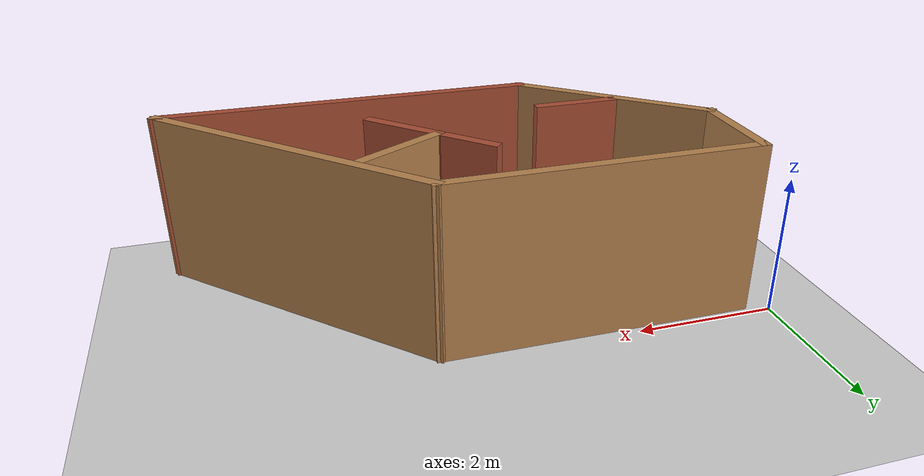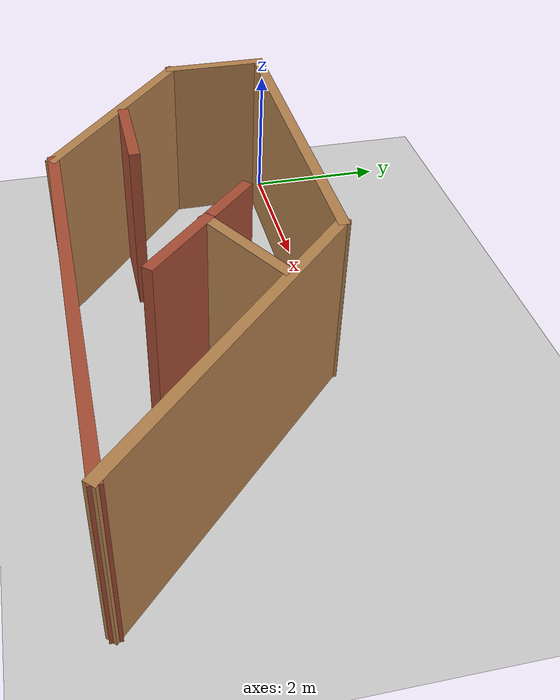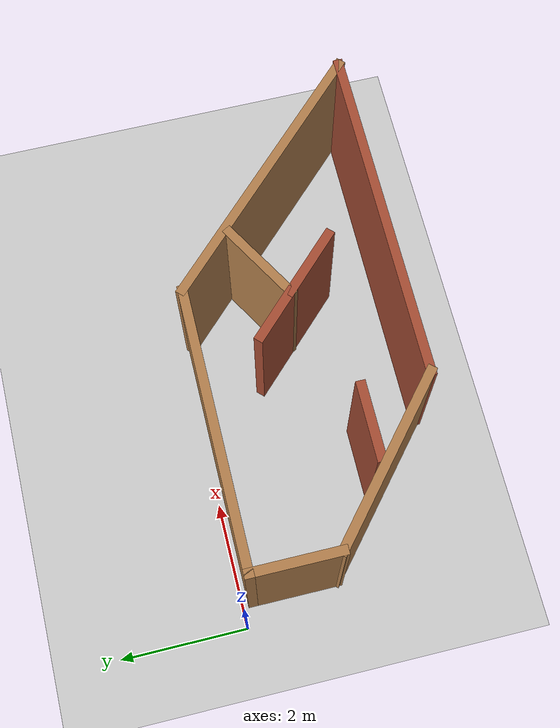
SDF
<sdf version="1.7">
 <world name="default">
  <light name="sun" type="directional">
   <pose>0 0 10 0 -0 0</pose>
   <diffuse>0.8 0.8 0.8 1</diffuse>
   <specular>0.2 0.2 0.2 1</specular>
   <attenuation>
    <range>1000</range>
    <constant>0.9</constant>
    <linear>0.01</linear>
    <quadratic>0.001</quadratic>
   </attenuation>
   <direction>-0.5 0.1 -0.9</direction>
   <spot><inner_angle>0</inner_angle><outer_angle>0</outer_angle><falloff>0</falloff></spot>
  </light>
  <model name="ground_plane">
   <static>1</static>
   <link name="link">
    <collision name="collision">
     <geometry><plane><normal>0 0 1</normal><size>100 100</size></plane></geometry>
     <surface>
      <contact><collide_bitmask>65535</collide_bitmask></contact>
      <friction><ode><mu>100</mu><mu2>50</mu2></ode></friction>
     </surface>
    </collision>
    <visual name="visual">
     <cast_shadows>0</cast_shadows>
     <geometry><plane><normal>0 0 1</normal><size>100 100</size></plane></geometry>
     <material>
      <script><uri>file://media/materials/scripts/gazebo.material</uri><name>Gazebo/Grey</name></script>
     </material>
    </visual>
   </link>
  </model>
  <gravity>0 0 -9.8</gravity>
  <magnetic_field>6e-06 2.3e-05 -4.2e-05</magnetic_field>
  <atmosphere type="adiabatic"/>
  <physics type="ode">
   <max_step_size>0.001</max_step_size>
   <real_time_factor>1</real_time_factor>
   <real_time_update_rate>1000</real_time_update_rate>
  </physics>
  <scene><ambient>0.4 0.4 0.4 1</ambient><background>0.7 0.7 0.7 1</background><shadows>1</shadows></scene>
  <spherical_coordinates>
   <surface_model>EARTH_WGS84</surface_model>
   <latitude_deg>0</latitude_deg>
   <longitude_deg>0</longitude_deg>
   <elevation>0</elevation>
   <heading_deg>0</heading_deg>
  </spherical_coordinates>
  <model name="sim_world">
   <pose>4.18811 -1.66131 0 0 -0 0</pose>
   <link name="Wall_40">
    <collision name="Wall_40_Collision">
     <geometry><box><size>1.5 0.15 2.5</size></box></geometry>
     <pose>0 0 1.25 0 -0 0</pose>
    </collision>
    <visual name="Wall_40_Visual">
     <pose>0 0 1.25 0 -0 0</pose>
     <geometry><box><size>1.5 0.15 2.5</size></box></geometry>
     <material>
      <script><uri>file://media/materials/scripts/gazebo.material</uri><name>Gazebo/Wood</name></script>
      <ambient>1 1 1 1</ambient>
     </material>
     <meta><layer>0</layer></meta>
    </visual>
    <pose>-3.80153 0.819379 0 0 -0 -1.5708</pose>
   </link>
   <link name="Wall_42">
    <collision name="Wall_42_Collision">
     <geometry><box><size>4.5 0.15 2.5</size></box></geometry>
     <pose>0 0 1.25 0 -0 0</pose>
    </collision>
    <visual name="Wall_42_Visual">
     <pose>0 0 1.25 0 -0 0</pose>
     <geometry><box><size>4.5 0.15 2.5</size></box></geometry>
     <material>
      <script><uri>file://media/materials/scripts/gazebo.material</uri><name>Gazebo/Wood</name></script>
      <ambient>1 1 1 1</ambient>
     </material>
     <meta><layer>0</layer></meta>
    </visual>
    <pose>-1.62653 1.49438 0 0 -0 0</pose>
   </link>
   <link name="Wall_43">
    <collision name="Wall_43_Collision">
     <geometry><box><size>4.75 0.15 2.5</size></box></geometry>
     <pose>0 0 1.25 0 -0 0</pose>
    </collision>
    <visual name="Wall_43_Visual">
     <pose>0 0 1.25 0 -0 0</pose>
     <geometry><box><size>4.75 0.15 2.5</size></box></geometry>
     <material>
      <script><uri>file://media/materials/scripts/gazebo.material</uri><name>Gazebo/Wood</name></script>
      <ambient>1 1 1 1</ambient>
     </material>
     <meta><layer>0</layer></meta>
    </visual>
    <pose>2.17481 -0.131967 0 0 -0 -0.785398</pose>
   </link>
   <link name="Wall_45">
    <collision name="Wall_45_Collision">
     <geometry><box><size>5.5 0.15 2.5</size></box></geometry>
     <pose>0 0 1.25 0 -0 0</pose>
    </collision>
    <visual name="Wall_45_Visual">
     <pose>0 0 1.25 0 -0 0</pose>
     <geometry><box><size>5.5 0.15 2.5</size></box></geometry>
     <material>
      <script><uri>file://media/materials/scripts/gazebo.material</uri><name>Gazebo/Bricks</name></script>
      <ambient>1 1 1 1</ambient>
     </material>
     <meta><layer>0</layer></meta>
    </visual>
    <pose>1.12616 -1.75831 0 0 -0 3.14159</pose>
   </link>
   <link name="Wall_46">
    <collision name="Wall_46_Collision">
     <geometry><box><size>3.0987 0.15 2.5</size></box></geometry>
     <pose>0 0 1.25 0 -0 0</pose>
    </collision>
    <visual name="Wall_46_Visual">
     <pose>0 0 1.25 0 -0 0</pose>
     <geometry><box><size>3.0987 0.15 2.5</size></box></geometry>
     <material>
      <script><uri>file://media/materials/scripts/gazebo.material</uri><name>Gazebo/Wood</name></script>
      <ambient>1 1 1 1</ambient>
     </material>
     <meta><layer>0</layer></meta>
    </visual>
    <pose>-2.67519 -0.806967 0 0 -0 2.44022</pose>
   </link>
   <link name="Wall_48">
    <collision name="Wall_48_Collision">
     <geometry><box><size>1.5 0.15 2.5</size></box></geometry>
     <pose>0 0 1.25 0 -0 0</pose>
    </collision>
    <visual name="Wall_48_Visual">
     <pose>0 0 1.25 0 -0 0</pose>
     <geometry><box><size>1.5 0.15 2.5</size></box></geometry>
     <material>
      <script><uri>file://media/materials/scripts/gazebo.material</uri><name>Gazebo/Wood</name></script>
      <ambient>1 1 1 1</ambient>
     </material>
     <meta><layer>0</layer></meta>
    </visual>
    <pose>0.7339 0.266879 0 0 -0 -2.61799</pose>
   </link>
   <link name="Wall_49">
    <collision name="Wall_49_Collision">
     <geometry><box><size>1 0.15 2.5</size></box></geometry>
     <pose>0 0 1.25 0 -0 0</pose>
    </collision>
    <visual name="Wall_49_Visual">
     <pose>0 0 1.25 0 -0 0</pose>
     <geometry><box><size>1 0.15 2.5</size></box></geometry>
     <material>
      <script><uri>file://media/materials/scripts/gazebo.material</uri><name>Gazebo/Bricks</name></script>
      <ambient>1 1 1 1</ambient>
     </material>
     <meta><layer>0</layer></meta>
    </visual>
    <pose>-0.151187 0.229899 0 0 -0 2.35619</pose>
   </link>
   <link name="Wall_51">
    <collision name="Wall_51_Collision">
     <geometry><box><size>1.25 0.15 2.5</size></box></geometry>
     <pose>0 0 1.25 0 -0 0</pose>
    </collision>
    <visual name="Wall_51_Visual">
     <pose>0 0 1.25 0 -0 0</pose>
     <geometry><box><size>1.25 0.15 2.5</size></box></geometry>
     <material>
      <script><uri>file://media/materials/scripts/gazebo.material</uri><name>Gazebo/Bricks</name></script>
      <ambient>1 1 1 1</ambient>
     </material>
     <meta><layer>0</layer></meta>
    </visual>
    <pose>0.538242 -0.45953 0 0 -0 -0.785398</pose>
   </link>
   <link name="Wall_53">
    <collision name="Wall_53_Collision">
     <geometry><box><size>1.25 0.15 2.5</size></box></geometry>
     <pose>0 0 1.25 0 -0 0</pose>
    </collision>
    <visual name="Wall_53_Visual">
     <pose>0 0 1.25 0 -0 0</pose>
     <geometry><box><size>1.25 0.15 2.5</size></box></geometry>
     <material>
      <script><uri>file://media/materials/scripts/gazebo.material</uri><name>Gazebo/Bricks</name></script>
      <ambient>1 1 1 1</ambient>
     </material>
     <meta><layer>0</layer></meta>
    </visual>
    <pose>-2.08153 -0.715621 0 0 -0 0</pose>
   </link>
   <static>1</static>
  </model>
 </world>
</sdf>
